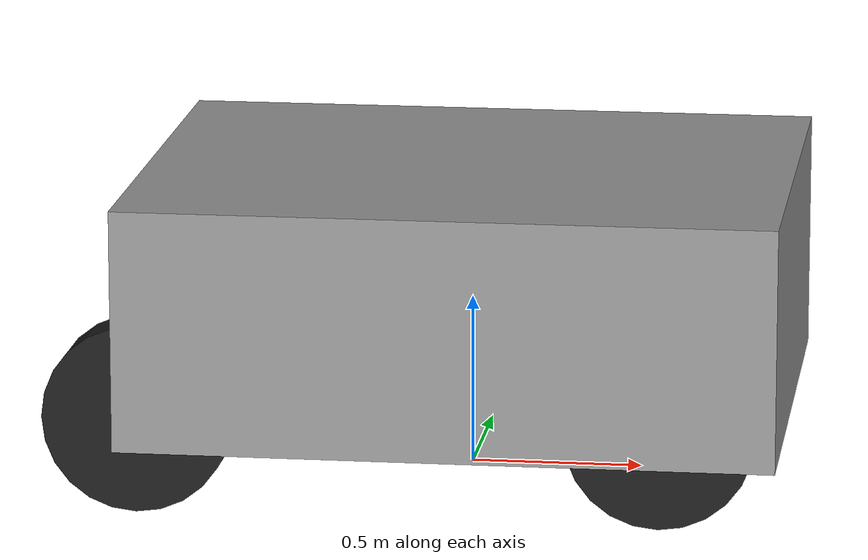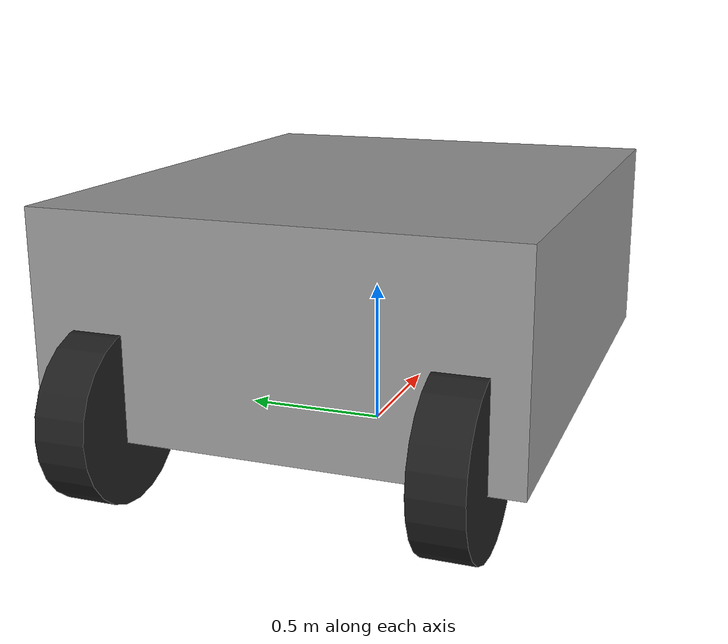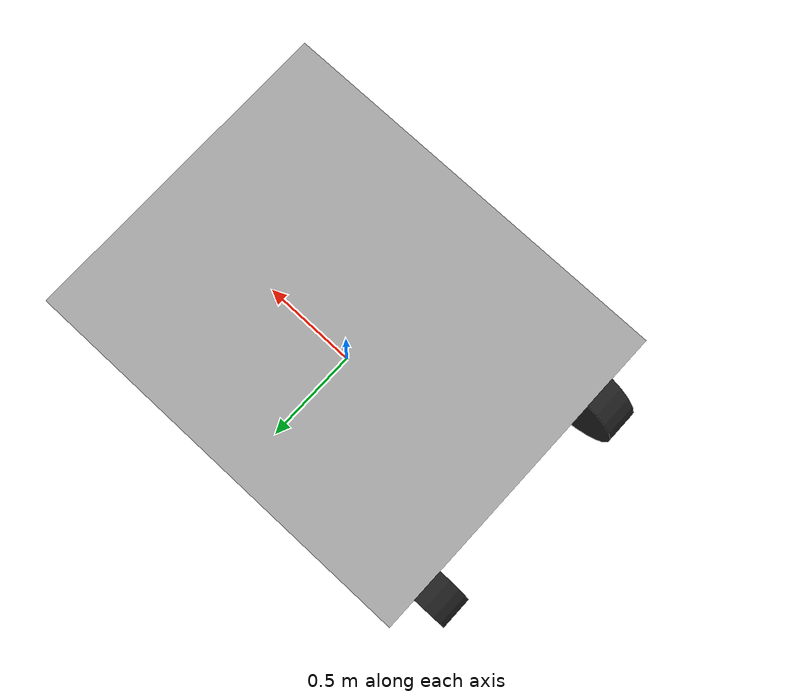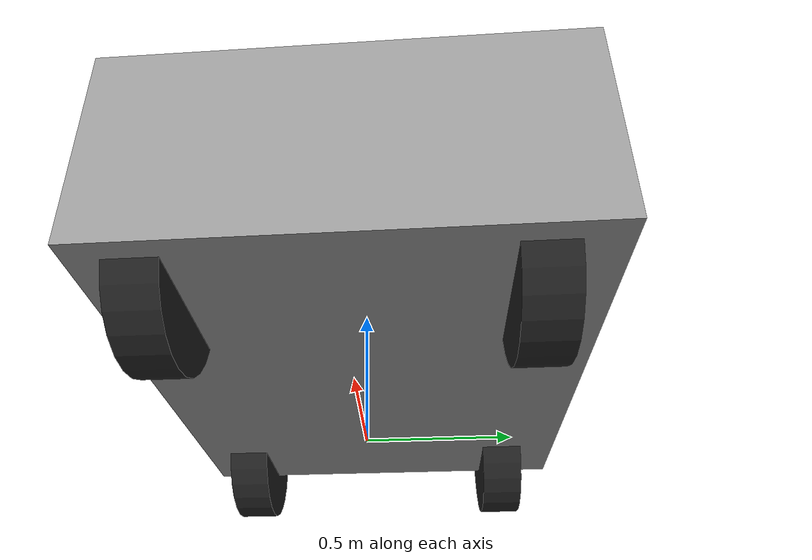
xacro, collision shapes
<?xml version="1.0" ?>
<robot name="simple_rover" xmlns:xacro="http://www.ros.org/wiki/xacro">
  <xacro:property name="base_length" value="1.88"/>
  <xacro:property name="base_height" value="0.7"/>
  <xacro:property name="base_width" value="1.52"/>
  <xacro:property name="wheel_radius" value="0.272"/>
  <xacro:property name="wheel_width" value="0.162"/>
  <link name="base_link">
    <visual>
      <geometry>
         <mesh filename="package://my_robot_description/meshes/base_robot_amiga.dae" scale="1 1 1"/>
      </geometry>
      <origin rpy="0 0 ${pi}" xyz="0 0 0"/>
      <material name="gray"/>
    </visual>
    <xacro:box_inertia m="100" x="${base_length}" y="${base_width}" z="${base_height}" o_xyz="0 0 ${base_height/2}" o_rpy="0 0 0"/>
    <collision>
      <origin rpy="0 0 0" xyz="0 0 0.55"/>
      <geometry>
        <box size="${base_length} ${base_width} ${base_height}"/>
      </geometry>
    </collision>
  </link>
  <link name="front_left_wheel">
    <visual>
      <geometry>
        <mesh filename="package://my_robot_description/meshes/wheel.dae" scale="1 1 1"/>
      </geometry>
      <origin rpy="0 0 ${pi}" xyz="0 0 0"/>
      <material name="black"/>
    </visual>
    <xacro:cylinder_inertia m="10" r="${wheel_radius}" h="${wheel_width}" o_xyz="0 0 0" o_rpy="${pi/2} 0 0"/>
    <collision>
      <geometry>
        <cylinder length="${wheel_width}" radius="${wheel_radius}"/>
      </geometry>
      <origin rpy="${pi / 2} 0 0" xyz="0 0 0"/>
    </collision>
  </link>
  <joint name="front_left_joint" type="continuous">
    <parent link="base_link"/>
    <child link="front_left_wheel"/>
    <origin rpy="0 0 0" xyz="0.60468 -0.57165 0.27"/>
    <axis xyz="0 1 0"/>
  </joint>
  <link name="front_right_wheel">
    <visual>
      <geometry>
        <mesh filename="package://my_robot_description/meshes/wheel.dae" scale="1 1 1"/>
      </geometry>
      <origin rpy="0 0 0" xyz="0 0 0"/>
      <material name="black"/>
    </visual>
    <xacro:cylinder_inertia m="10" r="${wheel_radius}" h="${wheel_width}" o_xyz="0 0 0" o_rpy="${pi/2} 0 0"/>
    <collision>
      <geometry>
        <cylinder length="${wheel_width}" radius="${wheel_radius}"/>
      </geometry>
      <origin rpy="${pi / 2} 0 0" xyz="0 0 0"/>
    </collision>
  </link>
  <joint name="front_right_joint" type="continuous">
    <parent link="base_link"/>
    <child link="front_right_wheel"/>
    <origin rpy="0 0 0" xyz="0.60468 0.5403 0.27"/>
    <axis xyz="0 1 0"/>
  </joint>
  <link name="rear_left_wheel">
    <visual>
      <geometry>
        <mesh filename="package://my_robot_description/meshes/wheel.dae" scale="1 1 1"/>
      </geometry>
      <origin rpy="0 0 ${pi}" xyz="0 0 0"/>
      <material name="black"/>
    </visual>
    <xacro:cylinder_inertia m="10" r="${wheel_radius}" h="${wheel_width}" o_xyz="0 0 0" o_rpy="${pi/2} 0 0"/>
    <collision>
      <geometry>
        <cylinder length="${wheel_width}" radius="${wheel_radius}"/>
      </geometry>
      <origin rpy="${pi / 2} 0 0" xyz="0 0 0"/>
    </collision>
  </link>
  <joint name="rear_left_joint" type="continuous">
    <parent link="base_link"/>
    <child link="rear_left_wheel"/>
    <origin rpy="0 0 0" xyz="-0.89016 -0.57165 0.27"/>
    <axis xyz="0 1 0"/>
  </joint>
  <link name="rear_right_wheel">
    <visual>
      <geometry>
        <mesh filename="package://my_robot_description/meshes/wheel.dae" scale="1 1 1"/>
      </geometry>
      <origin rpy="0 0 0" xyz="0 0 0"/>
      <material name="black"/>
    </visual>
    <xacro:cylinder_inertia m="10" r="${wheel_radius}" h="${wheel_width}" o_xyz="0 0 0" o_rpy="${pi/2} 0 0"/>
    <collision>
      <geometry>
        <cylinder length="${wheel_width}" radius="${wheel_radius}"/>
      </geometry>
      <origin rpy="${pi / 2} 0 0" xyz="0 0 0"/>
    </collision>
  </link>
  <joint name="rear_right_joint" type="continuous">
    <parent link="base_link"/>
    <child link="rear_right_wheel"/>
    <origin rpy="0 0 0" xyz="-0.89016 0.5403 0.27"/>
    <axis xyz="0 1 0"/>
  </joint>
</robot>
